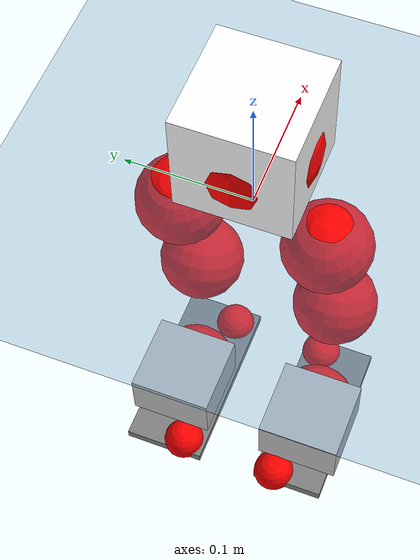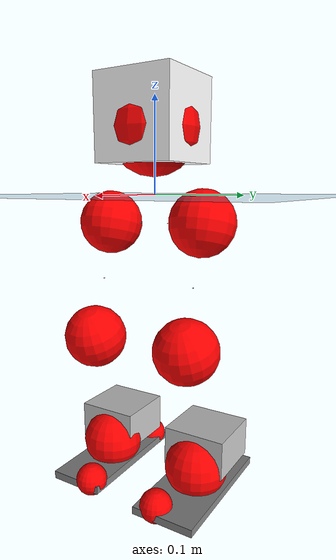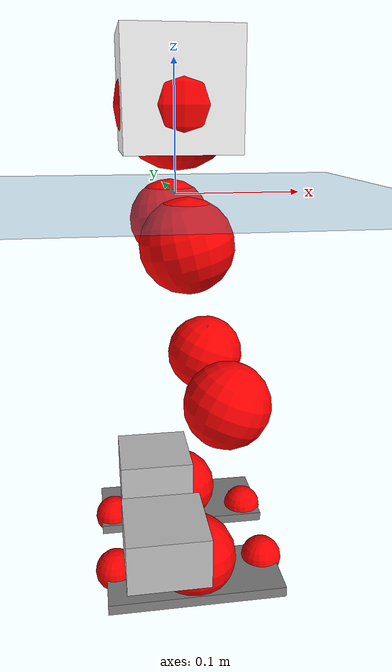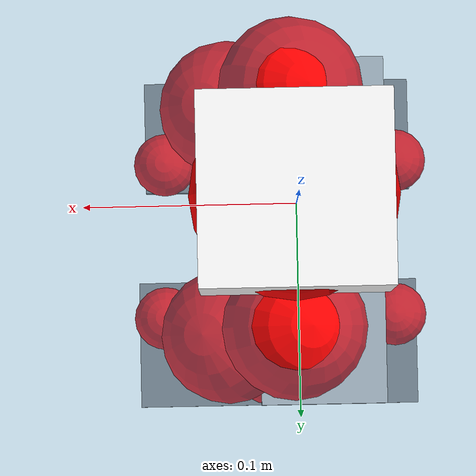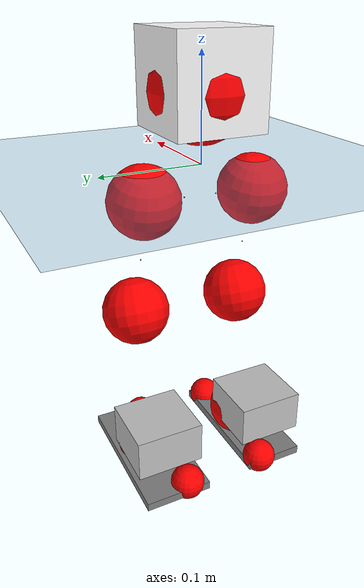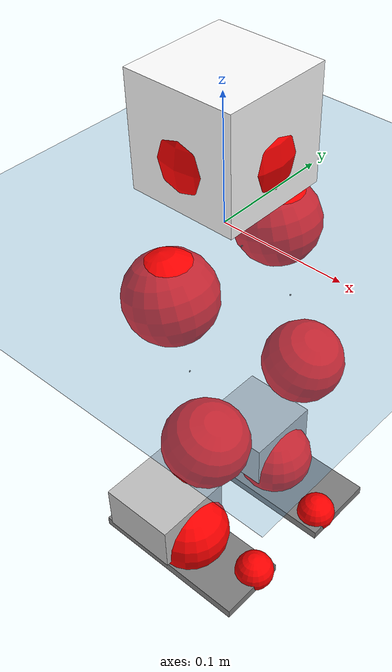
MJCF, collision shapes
<mujoco model="pi_12dof_release_v1">
  <compiler angle="radian" assetdir="assets" balanceinertia="true" inertiafromgeom="false"/>

  <option timestep="0.005" density="1.2" viscosity="2e-05"/>

  <size nkey="1"/>

  <visual>
    <quality shadowsize="8192"/>
    <map shadowclip="0.5"/>
  </visual>

  <default>
    <default class="/">
      <joint armature="0.01" damping="0.01" frictionloss="0.01"/>
      <geom contype="0" conaffinity="0" group="1" solref="-1000 -80"/>
      <site size="0.01 0.005 0.005" group="5"/>
      <general forcelimited="true" biastype="affine" gainprm="20" biasprm="0 -20 -0.5"/>
      <default class="foot">
        <geom size="0.0845 0.036 0.005" type="box" condim="6" group="4" priority="1" friction="0.9 0.2 0.2" solimp="0.015 1 0.005"/>
      </default>
      <default class="reward_collision_sphere">
        <geom group="5" rgba="1 0 0 1"/>
      </default>
    </default>
  </default>

  <asset>
    <texture type="skybox" colorspace="auto" name="//unnamed_texture_0" builtin="gradient" rgb1="0.95 0.95 0.95" rgb2="0.95 0.95 0.95" width="100" height="600"/>
    <texture type="2d" colorspace="auto" name="texplane" builtin="checker" rgb1="0.345 0.575 0.748" rgb2="0.345 0.575 0.748" markrgb="1 1 1" width="512" height="512"/>
    <material name="MatPlane" class="/" texture="texplane" texuniform="true" texrepeat="2 2" specular="0.9"/>
    <mesh name="baselink_1" class="/" file="baselink_1.STL"/>
    <mesh name="r_hip_pitch_link" class="/" file="r_hip_pitch_link.STL"/>
    <mesh name="r_hip_roll_link" class="/" file="r_hip_roll_link.STL"/>
    <mesh name="r_thigh_link" class="/" file="r_thigh_link.STL"/>
    <mesh name="r_calf_link" class="/" file="r_calf_link.STL"/>
    <mesh name="r_ankle_pitch_link" class="/" file="r_ankle_pitch_link.STL"/>
    <mesh name="r_ankle_roll_link" class="/" file="r_ankle_roll_link.STL"/>
    <mesh name="l_hip_pitch_link" class="/" file="l_hip_pitch_link.STL"/>
    <mesh name="l_hip_roll_link" class="/" file="l_hip_roll_link.STL"/>
    <mesh name="l_thigh_link" class="/" file="l_thigh_link.STL"/>
    <mesh name="l_calf_link" class="/" file="l_calf_link.STL"/>
    <mesh name="l_ankle_pitch_link" class="/" file="l_ankle_pitch_link.STL"/>
    <mesh name="l_ankle_roll_link" class="/" file="l_ankle_roll_link.STL"/>
  </asset>

  <worldbody>
    <geom name="floor" class="/" size="100 100 0.125" type="plane" group="0" material="MatPlane"/>
    <light name="toplight_shadow" class="/" pos="0 0 5" dir="0.0990148 0.0990148 -0.990148" type="directional" ambient="0.04 0.04 0.04" diffuse="0.55 0.55 0.55" specular="0.12 0.12 0.12"/>
    <light name="toplight_fill" class="/" pos="0 0 5" dir="0.0990148 0.0990148 -0.990148" type="directional" castshadow="false" ambient="0.04 0.04 0.04" diffuse="0.3 0.3 0.3" specular="0.08 0.08 0.08"/>
    <body name="trunk" pos="0.00178825 -9.54233e-05 0.000956122" quat="1 0.000635087 1.83277e-06 -0.00015967">
      <inertial pos="0.000538582 -0.00163102 0.0369365" quat="0.69505 0.0112209 0.0101481 0.718802" mass="1.37464" diaginertia="0.00727067 0.00196798 0.00279475"/>
      <joint name="//unnamed_joint_0" type="free"/>
      <geom name="//unnamed_geom_1" class="/" type="mesh" density="0" rgba="1 1 1 1" mesh="baselink_1"/>
      <geom name="//unnamed_geom_2" class="/" size="0.0435268 0.0435268 0.0435268" pos="0 0 0.0742075" type="box" rgba="1 1 1 1"/>
      <geom name="//unnamed_geom_3" class="reward_collision_sphere" size="0.0478795" pos="0 0 0.0649315"/>
      <site name="imu" class="/" pos="-0.00119915 -0.00399838 0.00568941" size="0.00870536"/>
      <camera name="track" class="/" pos="0 -1.47883 0" quat="0.707107 0.707107 0 0" mode="trackcom"/>
      <camera name="ego_camera" class="/" pos="0.0708452 0 0.166967" quat="-0.5 -0.5 0.5 0.5"/>
      <body name="r_hip_pitch_link" pos="0.000304238 -0.0165625 -0.0313212" quat="0.992262 -0.000335176 -0.124162 0.000127186">
        <inertial pos="0.00101473 -0.0418583 -5.71401e-05" quat="-0.0202348 0.704898 -0.0276925 0.708479" mass="0.24721" diaginertia="8.35504e-05 2.14527e-05 5.69409e-05"/>
        <joint name="r_hip_pitch_joint" class="/" pos="0 0 0" axis="-0.000652677 -1 0.000109004" stiffness="0.00273744" range="-1.72996 1.25963" armature="0.0088914" damping="0.0162285" frictionloss="0.00874178"/>
        <geom name="//unnamed_geom_4" class="/" type="mesh" density="0" rgba="0.75294 0.75294 0.75294 1" mesh="r_hip_pitch_link"/>
        <geom name="//unnamed_geom_5" class="/" size="0.000435268 0.000435268 0.000435268" type="box" rgba="0.75294 0.75294 0.75294 1"/>
        <body name="r_hip_roll_link" pos="-0.00070296 -0.0401778 -0.000178458" quat="1 -0.000187146 4.84021e-06 0.000165186">
          <inertial pos="-0.000873035 8.52812e-05 -0.0584505" quat="0.706107 -0.0791295 -0.0826172 0.698803" mass="0.25636" diaginertia="0.000248334 6.15603e-05 9.02665e-05"/>
          <joint name="r_hip_roll_joint" class="/" pos="0 0 0" axis="-1 -0.000628968 -0.000360956" range="-0.115824 0.497429" armature="0.00912321" damping="0" frictionloss="0.00898264"/>
          <geom name="//unnamed_geom_6" class="/" type="mesh" density="0" rgba="0.75294 0.75294 0.75294 1" mesh="r_hip_roll_link"/>
          <geom name="//unnamed_geom_7" class="/" size="0.000435268 0.000435268 0.000435268" type="box" rgba="0.75294 0.75294 0.75294 1"/>
          <geom name="//unnamed_geom_8" class="reward_collision_sphere" size="0.0348215"/>
          <body name="r_thigh_link" pos="-0.000554603 -0.000263174 -0.0635879" quat="1 0.000238426 -1.30934e-05 0.000102829">
            <inertial pos="-6.13224e-05 0.00063851 -0.0443364" quat="0.739089 0.673597 0.00355469 -0.00130646" mass="0.0743722" diaginertia="9.69621e-05 2.12999e-05 4.04299e-05"/>
            <joint name="r_thigh_joint" class="/" pos="0 0 0" axis="0.000894697 -0.000385514 -1" range="-0.309251 0.580354" armature="0.00896422" damping="0.00327072" frictionloss="0.0079172"/>
            <geom name="//unnamed_geom_9" class="/" type="mesh" density="0" rgba="0.75294 0.75294 0.75294 1" mesh="r_thigh_link"/>
            <geom name="//unnamed_geom_10" class="/" size="0.000435268 0.000435268 0.000435268" type="box" rgba="0.75294 0.75294 0.75294 1"/>
            <body name="r_calf_link" pos="-0.000572928 -0.00196418 -0.0666207" quat="0.947684 4.61243e-05 0.319209 0.00011188">
              <inertial pos="-0.00125881 -0.00153096 -0.0648571" quat="0.99996 -0.00446259 0.000590393 0.00767137" mass="0.535229" diaginertia="0.00266785 0.000780329 0.000121596"/>
              <joint name="r_calf_joint" class="/" pos="0 0 0" axis="-0.000155857 -1 -0.000294447" range="-1.618 0.638905" armature="0.00854839" damping="0.00973978" frictionloss="0.00879193"/>
              <geom name="//unnamed_geom_11" class="/" type="mesh" density="0" rgba="0.75294 0.75294 0.75294 1" mesh="r_calf_link"/>
              <geom name="//unnamed_geom_12" class="/" size="0.000435268 0.000435268 0.000435268" type="box" rgba="0.75294 0.75294 0.75294 1"/>
              <geom name="//unnamed_geom_13" class="reward_collision_sphere" size="0.0348215"/>
              <body name="r_ankle_pitch_link" pos="-1.0011e-05 -0.00052816 -0.129959" quat="0.980069 -5.41665e-05 -0.198656 5.64063e-05">
                <inertial pos="0.00380701 0.00246562 -0.000732574" quat="0.00188702 0.708413 -0.00213134 0.705792" mass="0.116671" diaginertia="0.000233125 5.00299e-05 8.391e-05"/>
                <joint name="r_ankle_pitch_joint" class="/" pos="0 0 0" axis="-0.00564685 -0.999984 0.000535505" stiffness="0.000220641" range="-1.31771 0.50051" armature="0.00872545" damping="0.00558804" frictionloss="0.0083899"/>
                <geom name="//unnamed_geom_14" class="/" type="mesh" density="0" rgba="0.75294 0.75294 0.75294 1" mesh="r_ankle_pitch_link"/>
                <geom name="//unnamed_geom_15" class="/" size="0.0339509 0.0348215 0.0217634" type="box" rgba="0.75294 0.75294 0.75294 1"/>
                <body name="r_ankle_roll_link" pos="0.0724462 0.00312952 0.000610876" quat="1 -7.64392e-06 2.70389e-05 9.61776e-06">
                  <inertial pos="-0.0226673 0.000296037 -0.0134178" quat="0.562986 0.431671 0.434565 0.554852" mass="0.343372" diaginertia="0.000851354 0.000228083 0.00019465"/>
                  <joint name="r_ankle_roll_joint" class="/" pos="0 0 0" axis="-0.999958 0.0083926 0.00367774" range="-0.176858 0.152648" armature="0.00920145" damping="0.00538906" frictionloss="0.00863314"/>
                  <geom name="//unnamed_geom_16" class="/" type="mesh" density="0" rgba="0.75294 0.75294 0.75294 1" mesh="r_ankle_roll_link"/>
                  <geom name="//unnamed_geom_17" class="/" type="mesh" rgba="0.75294 0.75294 0.75294 1" mesh="r_ankle_roll_link"/>
                  <geom name="right_foot" class="foot" size="0.0733136 0.0305934 0.0043858" pos="-0.0481747 0 -0.0408141"/>
                  <geom name="//unnamed_geom_19" class="reward_collision_sphere" size="0.0348215" pos="-0.0472301 0 -0.0185519"/>
                  <geom name="//unnamed_geom_20" class="reward_collision_sphere" size="0.0174107" pos="0.014169 0.0147883 -0.0371037"/>
                  <geom name="//unnamed_geom_21" class="reward_collision_sphere" size="0.0174107" pos="-0.113352 0.0147883 -0.0371037"/>
                  <site name="right_foot" class="foot" pos="-0.0481747 0 -0.0408141" size="0.00870536"/>
                </body>
              </body>
            </body>
          </body>
        </body>
      </body>
      <body name="l_hip_pitch_link" pos="-0.000161448 0.0169261 -0.0304376" quat="0.992192 0.000120755 -0.12472 -2.89428e-06">
        <inertial pos="-6.60539e-05 0.0411077 -8.9895e-05" quat="-0.0308717 0.709397 0.0276439 0.70359" mass="0.261994" diaginertia="9.70409e-05 2.33561e-05 7.02909e-05"/>
        <joint name="l_hip_pitch_joint" class="/" pos="0 0 0" axis="0.00641562 0.999972 0.00385824" range="-1.26469 1.74916" armature="0.00859409" damping="0.00596361" frictionloss="0.00866371"/>
        <geom name="//unnamed_geom_22" class="/" type="mesh" density="0" rgba="0.75294 0.75294 0.75294 1" mesh="l_hip_pitch_link"/>
        <geom name="//unnamed_geom_23" class="/" size="0.000435268 0.000435268 0.000435268" type="box" rgba="0.75294 0.75294 0.75294 1"/>
        <body name="l_hip_roll_link" pos="0.000296335 0.0405348 0.00116383" quat="1 -0.000165058 0.000185017 -5.91314e-05">
          <inertial pos="-0.00140445 -0.000164745 -0.0564598" quat="0.700776 -0.0734109 -0.0809742 0.704959" mass="0.260006" diaginertia="0.000248701 6.14071e-05 8.74502e-05"/>
          <joint name="l_hip_roll_joint" class="/" pos="0 0 0" axis="-0.999994 -0.00334439 -0.000319038" range="-0.510848 0.123745" armature="0.00901538" damping="0.00569614" frictionloss="0.00905587"/>
          <geom name="//unnamed_geom_24" class="/" type="mesh" density="0" rgba="0.75294 0.75294 0.75294 1" mesh="l_hip_roll_link"/>
          <geom name="//unnamed_geom_25" class="/" size="0.000435268 0.000435268 0.000435268" type="box" rgba="0.75294 0.75294 0.75294 1"/>
          <geom name="//unnamed_geom_26" class="reward_collision_sphere" size="0.0348215"/>
          <body name="l_thigh_link" pos="0.000185068 -0.000878044 -0.0657405" quat="1 -0.000149574 -6.11698e-06 -5.54391e-05">
            <inertial pos="0.00112956 0.000192812 -0.0444007" quat="0.678428 0.734666 0.000518638 0.000865204" mass="0.0737114" diaginertia="9.40392e-05 2.07067e-05 3.85641e-05"/>
            <joint name="l_thigh_joint" class="/" pos="0 0 0" axis="-0.00188216 -0.00377718 -0.999991" range="-0.605687 0.293749" armature="0.00834611" damping="0" frictionloss="0.00833012"/>
            <geom name="//unnamed_geom_27" class="/" type="mesh" density="0" rgba="0.75294 0.75294 0.75294 1" mesh="l_thigh_link"/>
            <geom name="//unnamed_geom_28" class="/" size="0.000435268 0.000435268 0.000435268" type="box" rgba="0.75294 0.75294 0.75294 1"/>
            <body name="l_calf_link" pos="-0.00053486 0.00123915 -0.0651379" quat="0.94787 0.000369187 0.318658 -8.07488e-05">
              <inertial pos="0.00188959 0.00208709 -0.06681" quat="0.999988 0.00264943 0.000132605 0.00421794" mass="0.536795" diaginertia="0.00265146 0.000775687 0.000119288"/>
              <joint name="l_calf_joint" class="/" pos="0 0 0" axis="-0.00154636 0.999994 -0.00304329" stiffness="0.00406696" range="-0.660373 1.66634" armature="0.00850566" damping="0.00560663" frictionloss="0.00838074"/>
              <geom name="//unnamed_geom_29" class="/" type="mesh" density="0" rgba="0.75294 0.75294 0.75294 1" mesh="l_calf_link"/>
              <geom name="//unnamed_geom_30" class="/" size="0.000435268 0.000435268 0.000435268" type="box" rgba="0.75294 0.75294 0.75294 1"/>
              <geom name="//unnamed_geom_31" class="reward_collision_sphere" size="0.0348215"/>
              <body name="l_ankle_pitch_link" pos="0.000956098 0.000692497 -0.131568" quat="0.980068 2.51907e-06 -0.198665 1.48787e-05">
                <inertial pos="0.00416057 -0.000535865 -0.000202974" quat="-0.0022301 0.707148 0.00208445 0.707059" mass="0.114995" diaginertia="0.000230271 4.88287e-05 8.24047e-05"/>
                <joint name="l_ankle_pitch_joint" class="/" pos="0 0 0" axis="0.00136688 0.999998 -0.00122584" range="-0.50268 1.31282" armature="0.00864441" damping="0.010681" frictionloss="0.00827999"/>
                <geom name="//unnamed_geom_32" class="/" type="mesh" density="0" rgba="0.75294 0.75294 0.75294 1" mesh="l_ankle_pitch_link"/>
                <geom name="//unnamed_geom_33" class="/" size="0.0339509 0.0348215 0.0217634" type="box" rgba="0.75294 0.75294 0.75294 1"/>
                <body name="l_ankle_roll_link" pos="0.0718472 5.16931e-05 -0.000895973" quat="1 -5.17576e-05 -4.11578e-05 -0.000168118">
                  <inertial pos="-0.0236021 -0.000204911 -0.0130765" quat="0.558342 0.433678 0.432111 0.559872" mass="0.342123" diaginertia="0.000842589 0.000227359 0.000196121"/>
                  <joint name="l_ankle_roll_joint" class="/" pos="0 0 0" axis="-0.999978 -0.00580191 0.00317761" range="-0.148995 0.132903" armature="0.00902839" damping="0.00815058" frictionloss="0.00911778"/>
                  <geom name="//unnamed_geom_34" class="/" type="mesh" density="0" rgba="0.75294 0.75294 0.75294 1" mesh="l_ankle_roll_link"/>
                  <geom name="//unnamed_geom_35" class="/" type="mesh" rgba="0.75294 0.75294 0.75294 1" mesh="l_ankle_roll_link"/>
                  <geom name="left_foot" class="foot" size="0.0769613 0.0344679 0.00415665" pos="-0.0481747 0 -0.0408141"/>
                  <geom name="//unnamed_geom_37" class="reward_collision_sphere" size="0.0348215" pos="-0.0472301 0 -0.0185519"/>
                  <geom name="//unnamed_geom_38" class="reward_collision_sphere" size="0.0174107" pos="0.014169 -0.0147883 -0.0371037"/>
                  <geom name="//unnamed_geom_39" class="reward_collision_sphere" size="0.0174107" pos="-0.113352 -0.0147883 -0.0371037"/>
                  <site name="left_foot" class="foot" pos="-0.0481747 0 -0.0408141" size="0.00870536"/>
                </body>
              </body>
            </body>
          </body>
        </body>
      </body>
    </body>
  </worldbody>

  <contact>
    <pair class="/" geom1="floor" geom2="right_foot" name="//unnamed_contact_1"/>
    <pair class="/" geom1="floor" geom2="left_foot" name="//unnamed_contact_0"/>
  </contact>

  <actuator>
    <general name="r_hip_pitch_joint" class="/" joint="r_hip_pitch_joint" forcerange="-18.4756 18.4756" gainprm="17.3465" biasprm="0 -17.3465 -0.425556"/>
    <general name="r_hip_roll_joint" class="/" joint="r_hip_roll_joint" forcerange="-17.8845 17.8845" gainprm="17.3465" biasprm="0 -17.3465 -0.425556"/>
    <general name="r_thigh_joint" class="/" joint="r_thigh_joint" forcerange="-17.9904 17.9904" gainprm="17.3465" biasprm="0 -17.3465 -0.425556"/>
    <general name="r_calf_joint" class="/" joint="r_calf_joint" forcerange="-19.4161 19.4161" gainprm="17.3465" biasprm="0 -17.3465 -0.425556"/>
    <general name="r_ankle_pitch_joint" class="/" joint="r_ankle_pitch_joint" forcerange="-18.4599 18.4599" gainprm="17.3465" biasprm="0 -17.3465 -0.425556"/>
    <general name="r_ankle_roll_joint" class="/" joint="r_ankle_roll_joint" forcerange="-17.4602 17.4602" gainprm="17.3465" biasprm="0 -17.3465 -0.425556"/>
    <general name="l_hip_pitch_joint" class="/" joint="l_hip_pitch_joint" forcerange="-18.1806 18.1806" gainprm="17.3465" biasprm="0 -17.3465 -0.425556"/>
    <general name="l_hip_roll_joint" class="/" joint="l_hip_roll_joint" forcerange="-18.8579 18.8579" gainprm="17.3465" biasprm="0 -17.3465 -0.425556"/>
    <general name="l_thigh_joint" class="/" joint="l_thigh_joint" forcerange="-17.9235 17.9235" gainprm="17.3465" biasprm="0 -17.3465 -0.425556"/>
    <general name="l_calf_joint" class="/" joint="l_calf_joint" forcerange="-18.4775 18.4775" gainprm="17.3465" biasprm="0 -17.3465 -0.425556"/>
    <general name="l_ankle_pitch_joint" class="/" joint="l_ankle_pitch_joint" forcerange="-17.6744 17.6744" gainprm="17.3465" biasprm="0 -17.3465 -0.425556"/>
    <general name="l_ankle_roll_joint" class="/" joint="l_ankle_roll_joint" forcerange="-18.2418 18.2418" gainprm="17.3465" biasprm="0 -17.3465 -0.425556"/>
  </actuator>

  <sensor>
    <gyro site="imu" name="imu_angular_velocity"/>
    <velocimeter site="imu" name="imu_linear_velocity"/>
    <framelinvel objtype="site" objname="left_foot" name="left_foot_global_linear_velocity"/>
    <framelinvel objtype="site" objname="right_foot" name="right_foot_global_linear_velocity"/>
  </sensor>

  <keyframe>
    <key name="home" qpos="0 0 0.291 1 0 0 0 0.4 0 0 -0.8 0.4 0 -0.4 0 0 0.8 -0.4 0"/>
  </keyframe>
</mujoco>
